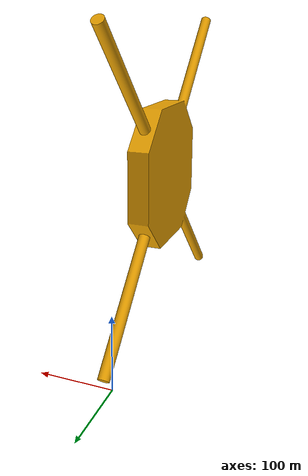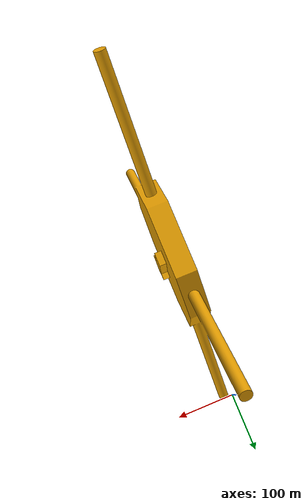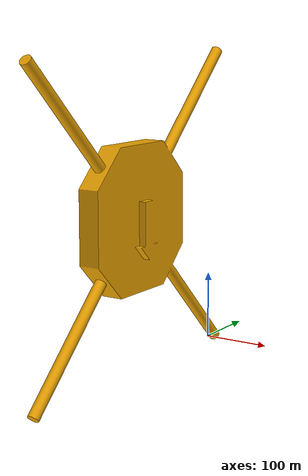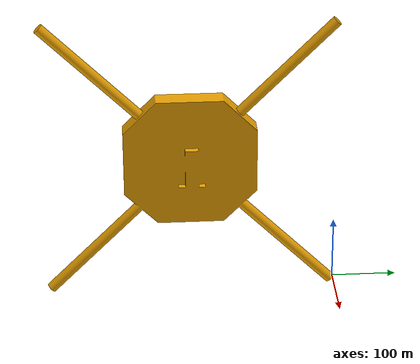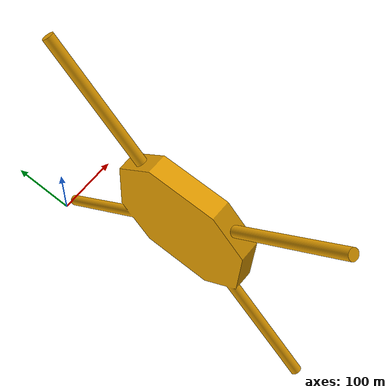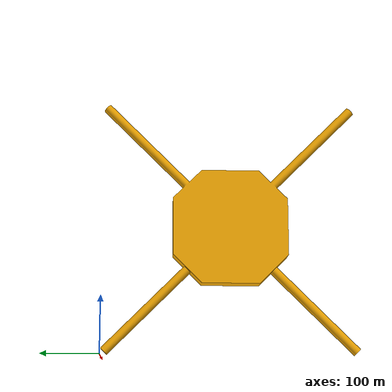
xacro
<?xml version="1.0"?>

<robot
  name="M100"
  xmlns:xacro="http://ros.org/wiki/xacro">

    <!-- Main quadrotor link -->
  <xacro:macro name="M100_macro">
    <link name="body">
      <inertial>
        <mass value="1.477" />
        <origin xyz="0 0 0" />
        <inertia ixx="0.01152" ixy="0.0" ixz="0.0" iyy="0.01152" iyz="0.0" izz="0.0218" />
      </inertial>

      <visual>
        <origin xyz="0 0 0" rpy="0 0 -1.57" />
        <geometry>
          <mesh filename="package://uavlaunch/model/m100.dae"/>
        </geometry>
      </visual>

    </link>

  </xacro:macro>
  <xacro:M100_macro/>
</robot>
